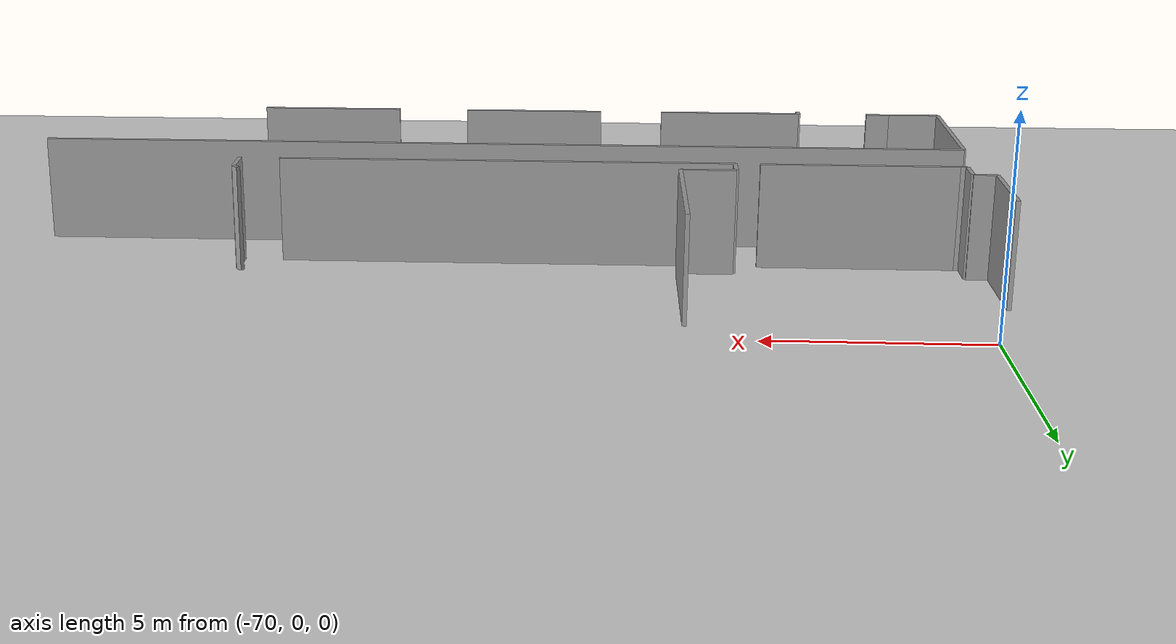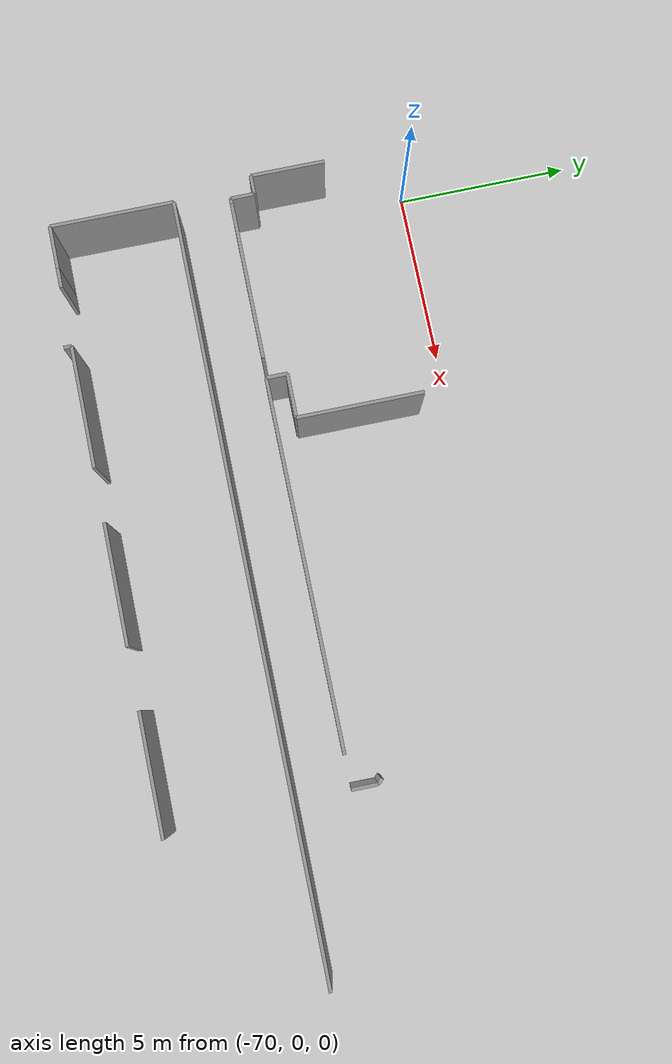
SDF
<sdf version="1.6">
 <world name="default">
  <model name="ground_plane">
   <static>1</static>
   <link name="link">
    <collision name="collision">
     <geometry><plane><normal>0 0 1</normal><size>100 100</size></plane></geometry>
     <surface><friction><ode><mu>100</mu><mu2>50</mu2></ode></friction></surface>
    </collision>
    <visual name="visual">
     <cast_shadows>0</cast_shadows>
     <geometry><plane><normal>0 0 1</normal><size>100 100</size></plane></geometry>
     <material>
      <script><uri>file://media/materials/scripts/gazebo.material</uri><name>Gazebo/Grey</name></script>
     </material>
    </visual>
   </link>
  </model>
  <model name="50055638">
   <static>1</static>
   <link name="Wall_0">
    <collision name="Wall_0_Collision">
     <geometry><box><size>0.158999485253 0.1 2.5</size></box></geometry>
     <pose>0.0794997426267 0 1.25 0 0 0</pose>
    </collision>
    <visual name="Wall_0_Visual">
     <pose>0.0794997426267 0 1.25 0 0 0</pose>
     <geometry><box><size>0.158999485253 0.1 2.5</size></box></geometry>
     <material>
      <script><uri>file://media/materials/scripts/gazebo.material</uri><name>Gazebo/Grey</name></script>
      <ambient>1 1 1 1</ambient>
     </material>
    </visual>
    <pose>0.707426966364 -25.9577780743 0 0 0 3.14159265359</pose>
   </link>
   <link name="Wall_1">
    <collision name="Wall_1_Collision">
     <geometry><box><size>0.69026874853 0.1 2.5</size></box></geometry>
     <pose>0.345134374265 0 1.25 0 0 0</pose>
    </collision>
    <visual name="Wall_1_Visual">
     <pose>0.345134374265 0 1.25 0 0 0</pose>
     <geometry><box><size>0.69026874853 0.1 2.5</size></box></geometry>
     <material>
      <script><uri>file://media/materials/scripts/gazebo.material</uri><name>Gazebo/Grey</name></script>
      <ambient>1 1 1 1</ambient>
     </material>
    </visual>
    <pose>0.54842748111 -25.9577780743 0 0 0 1.57079632679</pose>
   </link>
   <link name="Wall_2">
    <collision name="Wall_2_Collision">
     <geometry><box><size>0.54842748111 0.1 2.5</size></box></geometry>
     <pose>0.274213740555 0 1.25 0 0 0</pose>
    </collision>
    <visual name="Wall_2_Visual">
     <pose>0.274213740555 0 1.25 0 0 0</pose>
     <geometry><box><size>0.54842748111 0.1 2.5</size></box></geometry>
     <material>
      <script><uri>file://media/materials/scripts/gazebo.material</uri><name>Gazebo/Grey</name></script>
      <ambient>1 1 1 1</ambient>
     </material>
    </visual>
    <pose>0.54842748111 -25.2675093258 0 0 0 3.14159265359</pose>
   </link>
   <link name="Wall_3">
    <collision name="Wall_3_Collision">
     <geometry><box><size>2.14287076049 0.1 2.5</size></box></geometry>
     <pose>1.07143538025 0 1.25 0 0 0</pose>
    </collision>
    <visual name="Wall_3_Visual">
     <pose>1.07143538025 0 1.25 0 0 0</pose>
     <geometry><box><size>2.14287076049 0.1 2.5</size></box></geometry>
     <material>
      <script><uri>file://media/materials/scripts/gazebo.material</uri><name>Gazebo/Grey</name></script>
      <ambient>1 1 1 1</ambient>
     </material>
    </visual>
    <pose>0.0 -25.2675093258 0 0 0 1.57079632679</pose>
   </link>
   <link name="Wall_13">
    <collision name="Wall_13_Collision">
     <geometry><box><size>4.58264226665 0.1 2.5</size></box></geometry>
     <pose>2.29132113332 0 1.25 0 0 0</pose>
    </collision>
    <visual name="Wall_13_Visual">
     <pose>2.29132113332 0 1.25 0 0 0</pose>
     <geometry><box><size>4.58264226665 0.1 2.5</size></box></geometry>
     <material>
      <script><uri>file://media/materials/scripts/gazebo.material</uri><name>Gazebo/Grey</name></script>
      <ambient>1 1 1 1</ambient>
     </material>
    </visual>
    <pose>5.29006920481 -25.9572696827 0 0 0 -3.14148171505</pose>
   </link>
   <link name="Wall_14">
    <collision name="Wall_14_Collision">
     <geometry><box><size>0.604350561455 0.1 2.5</size></box></geometry>
     <pose>0.302175280728 0 1.25 0 0 0</pose>
    </collision>
    <visual name="Wall_14_Visual">
     <pose>0.302175280728 0 1.25 0 0 0</pose>
     <geometry><box><size>0.604350561455 0.1 2.5</size></box></geometry>
     <material>
      <script><uri>file://media/materials/scripts/gazebo.material</uri><name>Gazebo/Grey</name></script>
      <ambient>1 1 1 1</ambient>
     </material>
    </visual>
    <pose>5.87510088397 -25.9886628664 0 0 0 1.57079632679</pose>
   </link>
   <link name="Wall_15">
    <collision name="Wall_15_Collision">
     <geometry><box><size>1.28038434408 0.1 2.5</size></box></geometry>
     <pose>0.64019217204 0 1.25 0 0 0</pose>
    </collision>
    <visual name="Wall_15_Visual">
     <pose>0.64019217204 0 1.25 0 0 0</pose>
     <geometry><box><size>1.28038434408 0.1 2.5</size></box></geometry>
     <material>
      <script><uri>file://media/materials/scripts/gazebo.material</uri><name>Gazebo/Grey</name></script>
      <ambient>1 1 1 1</ambient>
     </material>
    </visual>
    <pose>5.87510088397 -25.384312305 0 0 0 0.0</pose>
   </link>
   <link name="Wall_16">
    <collision name="Wall_16_Collision">
     <geometry><box><size>3.64859969878 0.1 2.5</size></box></geometry>
     <pose>1.82429984939 0 1.25 0 0 0</pose>
    </collision>
    <visual name="Wall_16_Visual">
     <pose>1.82429984939 0 1.25 0 0 0</pose>
     <geometry><box><size>3.64859969878 0.1 2.5</size></box></geometry>
     <material>
      <script><uri>file://media/materials/scripts/gazebo.material</uri><name>Gazebo/Grey</name></script>
      <ambient>1 1 1 1</ambient>
     </material>
    </visual>
    <pose>7.15548522805 -25.384312305 0 0 0 1.57079632679</pose>
   </link>
   <link name="Wall_33">
    <collision name="Wall_33_Collision">
     <geometry><box><size>0.755851270026 0.1 2.5</size></box></geometry>
     <pose>0.377925635013 0 1.25 0 0 0</pose>
    </collision>
    <visual name="Wall_33_Visual">
     <pose>0.377925635013 0 1.25 0 0 0</pose>
     <geometry><box><size>0.755851270026 0.1 2.5</size></box></geometry>
     <material>
      <script><uri>file://media/materials/scripts/gazebo.material</uri><name>Gazebo/Grey</name></script>
      <ambient>1 1 1 1</ambient>
     </material>
    </visual>
    <pose>17.4527036903 -25.9650226552 0 0 0 1.57079632679</pose>
   </link>
   <link name="Wall_34">
    <collision name="Wall_34_Collision">
     <geometry><box><size>0.179145349332 0.1 2.5</size></box></geometry>
     <pose>0.0895726746661 0 1.25 0 0 0</pose>
    </collision>
    <visual name="Wall_34_Visual">
     <pose>0.0895726746661 0 1.25 0 0 0</pose>
     <geometry><box><size>0.179145349332 0.1 2.5</size></box></geometry>
     <material>
      <script><uri>file://media/materials/scripts/gazebo.material</uri><name>Gazebo/Grey</name></script>
      <ambient>1 1 1 1</ambient>
     </material>
    </visual>
    <pose>17.4527036903 -25.2091713852 0 0 0 2.3747573352</pose>
   </link>
   <link name="Wall_38">
    <collision name="Wall_38_Collision">
     <geometry><box><size>10.6363804328 0.1 2.5</size></box></geometry>
     <pose>5.31819021642 0 1.25 0 0 0</pose>
    </collision>
    <visual name="Wall_38_Visual">
     <pose>5.31819021642 0 1.25 0 0 0</pose>
     <geometry><box><size>10.6363804328 0.1 2.5</size></box></geometry>
     <material>
      <script><uri>file://media/materials/scripts/gazebo.material</uri><name>Gazebo/Grey</name></script>
      <ambient>1 1 1 1</ambient>
     </material>
    </visual>
    <pose>16.5114165698 -25.9515502768 0 0 0 -3.13810343419</pose>
   </link>
   <link name="Wall_177">
    <collision name="Wall_177_Collision">
     <geometry><box><size>1.25280409764 0.1 2.5</size></box></geometry>
     <pose>0.626402048818 0 1.25 0 0 0</pose>
    </collision>
    <visual name="Wall_177_Visual">
     <pose>0.626402048818 0 1.25 0 0 0</pose>
     <geometry><box><size>1.25280409764 0.1 2.5</size></box></geometry>
     <material>
      <script><uri>file://media/materials/scripts/gazebo.material</uri><name>Gazebo/Grey</name></script>
      <ambient>1 1 1 1</ambient>
     </material>
    </visual>
    <pose>1.57817474692 -31.1372720976 0 0 0 3.14159265359</pose>
   </link>
   <link name="Wall_178">
    <collision name="Wall_178_Collision">
     <geometry><box><size>3.57539130269 0.1 2.5</size></box></geometry>
     <pose>1.78769565135 0 1.25 0 0 0</pose>
    </collision>
    <visual name="Wall_178_Visual">
     <pose>1.78769565135 0 1.25 0 0 0</pose>
     <geometry><box><size>3.57539130269 0.1 2.5</size></box></geometry>
     <material>
      <script><uri>file://media/materials/scripts/gazebo.material</uri><name>Gazebo/Grey</name></script>
      <ambient>1 1 1 1</ambient>
     </material>
    </visual>
    <pose>0.32537064928 -31.1372720976 0 0 0 1.57079632679</pose>
   </link>
   <link name="Wall_179">
    <collision name="Wall_179_Collision">
     <geometry><box><size>22.1879905185 0.1 2.5</size></box></geometry>
     <pose>11.0939952592 0 1.25 0 0 0</pose>
    </collision>
    <visual name="Wall_179_Visual">
     <pose>11.0939952592 0 1.25 0 0 0</pose>
     <geometry><box><size>22.1879905185 0.1 2.5</size></box></geometry>
     <material>
      <script><uri>file://media/materials/scripts/gazebo.material</uri><name>Gazebo/Grey</name></script>
      <ambient>1 1 1 1</ambient>
     </material>
    </visual>
    <pose>0.32537064928 -27.5618807949 0 0 0 0.0</pose>
   </link>
   <link name="Wall_235">
    <collision name="Wall_235_Collision">
     <geometry><box><size>3.51387591431 0.1 2.5</size></box></geometry>
     <pose>1.75693795716 0 1.25 0 0 0</pose>
    </collision>
    <visual name="Wall_235_Visual">
     <pose>1.75693795716 0 1.25 0 0 0</pose>
     <geometry><box><size>3.51387591431 0.1 2.5</size></box></geometry>
     <material>
      <script><uri>file://media/materials/scripts/gazebo.material</uri><name>Gazebo/Grey</name></script>
      <ambient>1 1 1 1</ambient>
     </material>
    </visual>
    <pose>17.7438850018 -31.1591329381 0 0 0 3.14159265359</pose>
   </link>
   <link name="Wall_238">
    <collision name="Wall_238_Collision">
     <geometry><box><size>3.49277766127 0.1 2.5</size></box></geometry>
     <pose>1.74638883064 0 1.25 0 0 0</pose>
    </collision>
    <visual name="Wall_238_Visual">
     <pose>1.74638883064 0 1.25 0 0 0</pose>
     <geometry><box><size>3.49277766127 0.1 2.5</size></box></geometry>
     <material>
      <script><uri>file://media/materials/scripts/gazebo.material</uri><name>Gazebo/Grey</name></script>
      <ambient>1 1 1 1</ambient>
     </material>
    </visual>
    <pose>12.4738972668 -31.1530322384 0 0 0 3.14159265359</pose>
   </link>
   <link name="Wall_239">
    <collision name="Wall_239_Collision">
     <geometry><box><size>3.53866000674 0.1 2.5</size></box></geometry>
     <pose>1.76933000337 0 1.25 0 0 0</pose>
    </collision>
    <visual name="Wall_239_Visual">
     <pose>1.76933000337 0 1.25 0 0 0</pose>
     <geometry><box><size>3.53866000674 0.1 2.5</size></box></geometry>
     <material>
      <script><uri>file://media/materials/scripts/gazebo.material</uri><name>Gazebo/Grey</name></script>
      <ambient>1 1 1 1</ambient>
     </material>
    </visual>
    <pose>7.42467860116 -31.1530322384 0 0 0 3.14159265359</pose>
   </link>
   <link name="Wall_240">
    <collision name="Wall_240_Collision">
     <geometry><box><size>0.220514873633 0.1 2.5</size></box></geometry>
     <pose>0.110257436816 0 1.25 0 0 0</pose>
    </collision>
    <visual name="Wall_240_Visual">
     <pose>0.110257436816 0 1.25 0 0 0</pose>
     <geometry><box><size>0.220514873633 0.1 2.5</size></box></geometry>
     <material>
      <script><uri>file://media/materials/scripts/gazebo.material</uri><name>Gazebo/Grey</name></script>
      <ambient>1 1 1 1</ambient>
     </material>
    </visual>
    <pose>3.88601859442 -31.1530322384 0 0 0 -1.57079632679</pose>
   </link>
   <link name="Wall_242">
    <collision name="Wall_242_Collision">
     <geometry><box><size>0.574486615817 0.1 2.5</size></box></geometry>
     <pose>0.287243307908 0 1.25 0 0 0</pose>
    </collision>
    <visual name="Wall_242_Visual">
     <pose>0.287243307908 0 1.25 0 0 0</pose>
     <geometry><box><size>0.574486615817 0.1 2.5</size></box></geometry>
     <material>
      <script><uri>file://media/materials/scripts/gazebo.material</uri><name>Gazebo/Grey</name></script>
      <ambient>1 1 1 1</ambient>
     </material>
    </visual>
    <pose>2.15265729955 -31.1351114331 0 0 0 -3.13783160938</pose>
   </link>
   <pose>-70.65 20.8744774687 0 0 0 0</pose>
  </model>
 </world>
</sdf>
